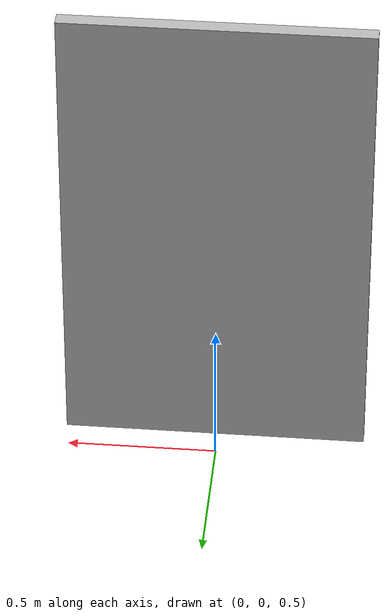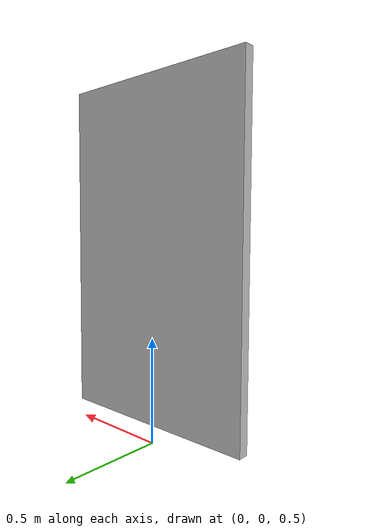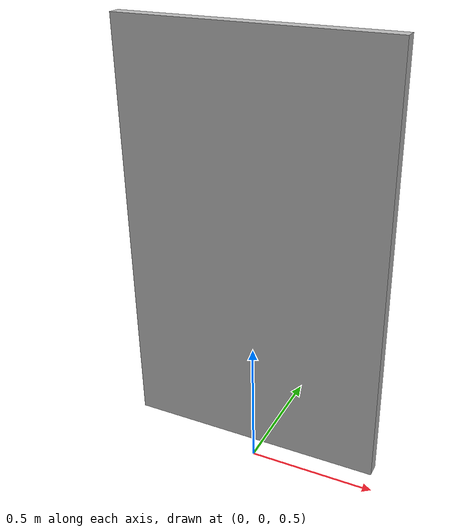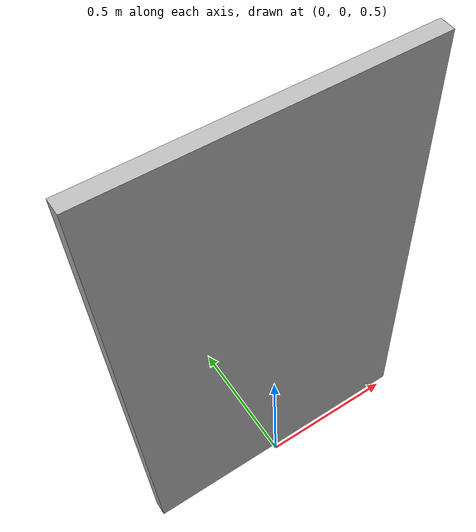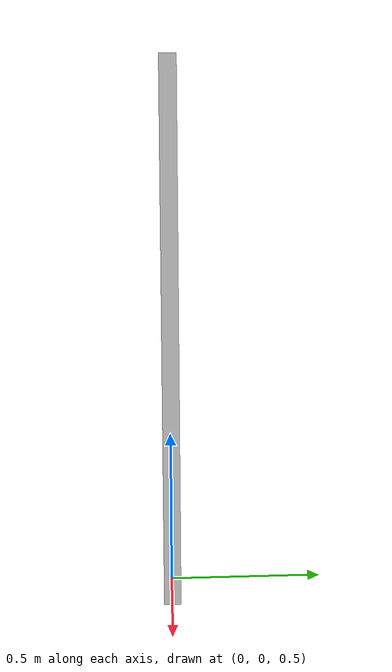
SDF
<?xml version="1.0" ?>
<sdf version="1.5">
  <model name="room3_img5p">

      <pose>0 0 1.4 0 0 0</pose>

      <static>true</static>

      <link name="link">
      <collision name='collision'>
        <geometry>
          <box>
            <size>2 0.05 1.4</size>
          </box>
        </geometry>
      </collision>

      <visual name='visual'>
        <geometry>
          <box>
            <size>1 0.05 1.6</size>
          </box>
        </geometry>

        <material>
          <script>
            <uri>model://leobot_gazebo/models/room3_img5p/materials/scripts</uri>
            <uri>model://leobot_gazebo/models/room3_img5p/materials/textures</uri>
            <name>room3/img5p</name>
          </script>
        </material>
      </visual>
    </link>
  </model>
</sdf>
